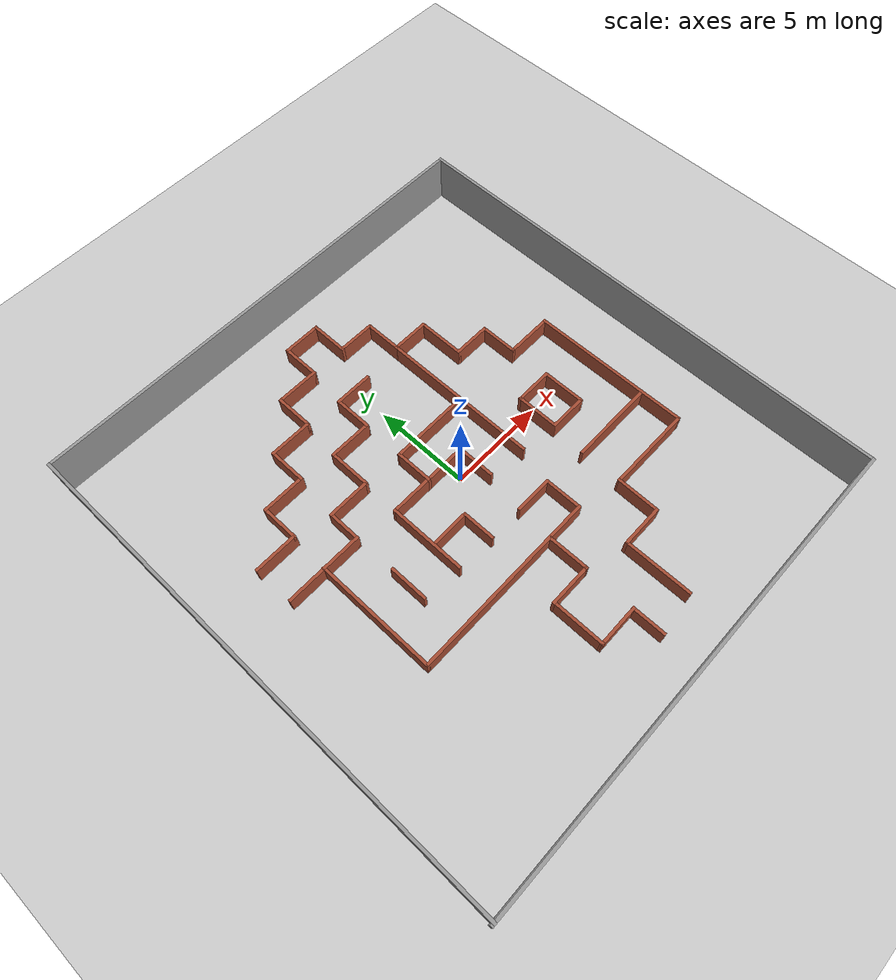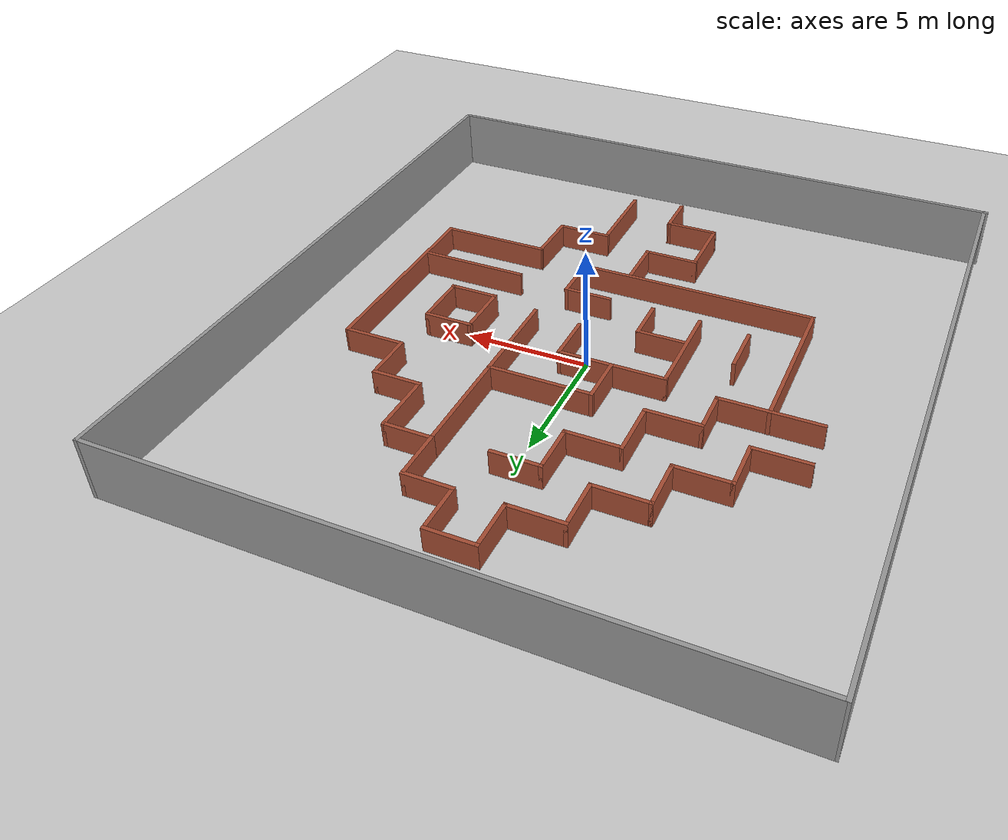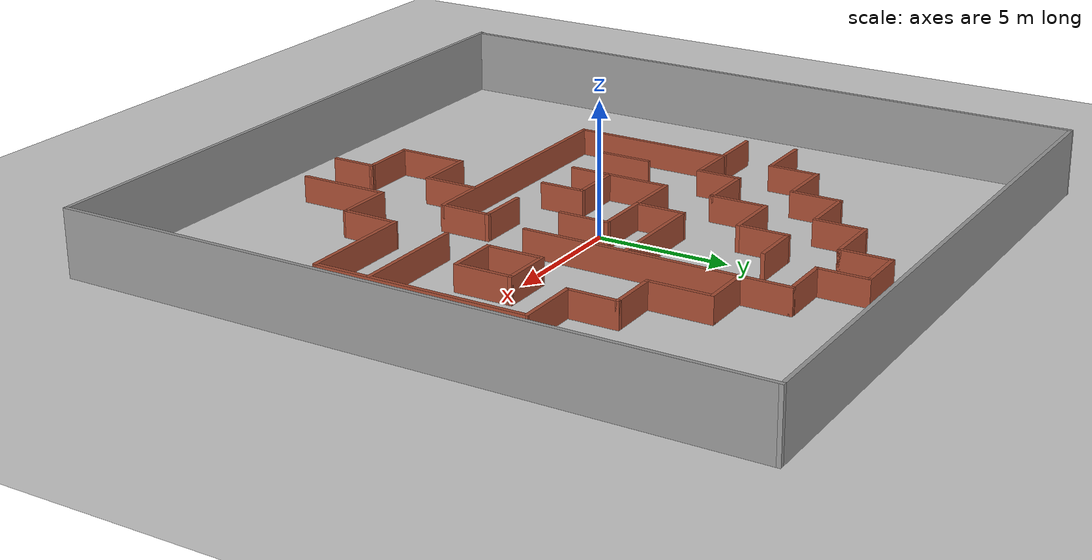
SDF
<sdf version="1.6">
 <world name="default">
  <light name="sun" type="directional">
   <pose>0 0 10 0 -0 0</pose>
   <diffuse>0.8 0.8 0.8 1</diffuse>
   <specular>0.1 0.1 0.1 1</specular>
   <attenuation>
    <range>1000</range>
    <constant>0.9</constant>
    <linear>0.01</linear>
    <quadratic>0.001</quadratic>
   </attenuation>
   <direction>-0.5 0.5 -1</direction>
  </light>
  <model name="ground_plane">
   <static>1</static>
   <link name="link">
    <collision name="collision">
     <geometry><plane><normal>0 0 1</normal><size>100 100</size></plane></geometry>
     <surface><friction><ode><mu>100</mu><mu2>50</mu2></ode></friction></surface>
    </collision>
    <visual name="visual">
     <cast_shadows>0</cast_shadows>
     <geometry><plane><normal>0 0 1</normal><size>100 100</size></plane></geometry>
     <material>
      <script><uri>file://media/materials/scripts/gazebo.material</uri><name>Gazebo/Grey</name></script>
     </material>
    </visual>
   </link>
  </model>
  <gravity>0 0 -9.8</gravity>
  <magnetic_field>6e-06 2.3e-05 -4.2e-05</magnetic_field>
  <atmosphere type="adiabatic"/>
  <physics name="default_physics" default="0" type="ode">
   <max_step_size>0.001</max_step_size>
   <real_time_factor>1</real_time_factor>
   <real_time_update_rate>1000</real_time_update_rate>
  </physics>
  <scene><ambient>0.4 0.4 0.4 1</ambient><background>0.7 0.7 0.7 1</background><shadows>1</shadows></scene>
  <spherical_coordinates>
   <surface_model>EARTH_WGS84</surface_model>
   <latitude_deg>0</latitude_deg>
   <longitude_deg>0</longitude_deg>
   <elevation>0</elevation>
   <heading_deg>0</heading_deg>
  </spherical_coordinates>
  <model name="Untitled">
   <pose>-0.282086 -0.280481 0 0 -0 0</pose>
   <link name="Wall_0">
    <collision name="Wall_0_Collision">
     <geometry><box><size>2.25 0.15 1</size></box></geometry>
     <pose>0 0 0.5 0 -0 0</pose>
    </collision>
    <visual name="Wall_0_Visual">
     <pose>0 0 0.5 0 -0 0</pose>
     <geometry><box><size>2.25 0.15 1</size></box></geometry>
     <material>
      <script><uri>file://media/materials/scripts/gazebo.material</uri><name>Gazebo/Bricks</name></script>
      <ambient>1 1 1 1</ambient>
     </material>
    </visual>
    <pose>-8.02791 3.36948 0 0 -0 0</pose>
   </link>
   <link name="Wall_1">
    <collision name="Wall_1_Collision">
     <geometry><box><size>2 0.15 1</size></box></geometry>
     <pose>0 0 0.5 0 -0 0</pose>
    </collision>
    <visual name="Wall_1_Visual">
     <pose>0 0 0.5 0 -0 0</pose>
     <geometry><box><size>2 0.15 1</size></box></geometry>
     <material>
      <script><uri>file://media/materials/scripts/gazebo.material</uri><name>Gazebo/Bricks</name></script>
      <ambient>1 1 1 1</ambient>
     </material>
    </visual>
    <pose>-6.97791 4.29448 0 0 -0 1.5708</pose>
   </link>
   <link name="Wall_10">
    <collision name="Wall_10_Collision">
     <geometry><box><size>2 0.15 1</size></box></geometry>
     <pose>0 0 0.5 0 -0 0</pose>
    </collision>
    <visual name="Wall_10_Visual">
     <pose>0 0 0.5 0 -0 0</pose>
     <geometry><box><size>2 0.15 1</size></box></geometry>
     <material>
      <script><uri>file://media/materials/scripts/gazebo.material</uri><name>Gazebo/Bricks</name></script>
      <ambient>1 1 1 1</ambient>
     </material>
    </visual>
    <pose>2.09709 8.91948 0 0 -0 0</pose>
   </link>
   <link name="Wall_11">
    <collision name="Wall_11_Collision">
     <geometry><box><size>2 0.15 1</size></box></geometry>
     <pose>0 0 0.5 0 -0 0</pose>
    </collision>
    <visual name="Wall_11_Visual">
     <pose>0 0 0.5 0 -0 0</pose>
     <geometry><box><size>2 0.15 1</size></box></geometry>
     <material>
      <script><uri>file://media/materials/scripts/gazebo.material</uri><name>Gazebo/Bricks</name></script>
      <ambient>1 1 1 1</ambient>
     </material>
    </visual>
    <pose>3.02209 7.99448 0 0 0 -1.5708</pose>
   </link>
   <link name="Wall_12">
    <collision name="Wall_12_Collision">
     <geometry><box><size>2 0.15 1</size></box></geometry>
     <pose>0 0 0.5 0 -0 0</pose>
    </collision>
    <visual name="Wall_12_Visual">
     <pose>0 0 0.5 0 -0 0</pose>
     <geometry><box><size>2 0.15 1</size></box></geometry>
     <material>
      <script><uri>file://media/materials/scripts/gazebo.material</uri><name>Gazebo/Bricks</name></script>
      <ambient>1 1 1 1</ambient>
     </material>
    </visual>
    <pose>3.94709 7.06948 0 0 -0 0</pose>
   </link>
   <link name="Wall_13">
    <collision name="Wall_13_Collision">
     <geometry><box><size>2.5 0.15 1</size></box></geometry>
     <pose>0 0 0.5 0 -0 0</pose>
    </collision>
    <visual name="Wall_13_Visual">
     <pose>0 0 0.5 0 -0 0</pose>
     <geometry><box><size>2.5 0.15 1</size></box></geometry>
     <material>
      <script><uri>file://media/materials/scripts/gazebo.material</uri><name>Gazebo/Bricks</name></script>
      <ambient>1 1 1 1</ambient>
     </material>
    </visual>
    <pose>4.87209 5.89448 0 0 0 -1.5708</pose>
   </link>
   <link name="Wall_14">
    <collision name="Wall_14_Collision">
     <geometry><box><size>2 0.15 1</size></box></geometry>
     <pose>0 0 0.5 0 -0 0</pose>
    </collision>
    <visual name="Wall_14_Visual">
     <pose>0 0 0.5 0 -0 0</pose>
     <geometry><box><size>2 0.15 1</size></box></geometry>
     <material>
      <script><uri>file://media/materials/scripts/gazebo.material</uri><name>Gazebo/Bricks</name></script>
      <ambient>1 1 1 1</ambient>
     </material>
    </visual>
    <pose>5.79709 4.71948 0 0 -0 0</pose>
   </link>
   <link name="Wall_15">
    <collision name="Wall_15_Collision">
     <geometry><box><size>2 0.15 1</size></box></geometry>
     <pose>0 0 0.5 0 -0 0</pose>
    </collision>
    <visual name="Wall_15_Visual">
     <pose>0 0 0.5 0 -0 0</pose>
     <geometry><box><size>2 0.15 1</size></box></geometry>
     <material>
      <script><uri>file://media/materials/scripts/gazebo.material</uri><name>Gazebo/Bricks</name></script>
      <ambient>1 1 1 1</ambient>
     </material>
    </visual>
    <pose>6.72209 3.79448 0 0 0 -1.5708</pose>
   </link>
   <link name="Wall_16">
    <collision name="Wall_16_Collision">
     <geometry><box><size>2.5 0.15 1</size></box></geometry>
     <pose>0 0 0.5 0 -0 0</pose>
    </collision>
    <visual name="Wall_16_Visual">
     <pose>0 0 0.5 0 -0 0</pose>
     <geometry><box><size>2.5 0.15 1</size></box></geometry>
     <material>
      <script><uri>file://media/materials/scripts/gazebo.material</uri><name>Gazebo/Bricks</name></script>
      <ambient>1 1 1 1</ambient>
     </material>
    </visual>
    <pose>7.89709 2.86948 0 0 -0 0</pose>
   </link>
   <link name="Wall_17">
    <collision name="Wall_17_Collision">
     <geometry><box><size>8.25 0.15 1</size></box></geometry>
     <pose>0 0 0.5 0 -0 0</pose>
    </collision>
    <visual name="Wall_17_Visual">
     <pose>0 0 0.5 0 -0 0</pose>
     <geometry><box><size>8.25 0.15 1</size></box></geometry>
     <material>
      <script><uri>file://media/materials/scripts/gazebo.material</uri><name>Gazebo/Bricks</name></script>
      <ambient>1 1 1 1</ambient>
     </material>
    </visual>
    <pose>9.08559 -1.18052 0 0 0 -1.56746</pose>
   </link>
   <link name="Wall_18">
    <collision name="Wall_18_Collision">
     <geometry><box><size>4.50013 0.15 1</size></box></geometry>
     <pose>0 0 0.5 0 -0 0</pose>
    </collision>
    <visual name="Wall_18_Visual">
     <pose>0 0 0.5 0 -0 0</pose>
     <geometry><box><size>4.50013 0.15 1</size></box></geometry>
     <material>
      <script><uri>file://media/materials/scripts/gazebo.material</uri><name>Gazebo/Bricks</name></script>
      <ambient>1 1 1 1</ambient>
     </material>
    </visual>
    <pose>6.92409 -5.23052 0 0 -0 3.14159</pose>
   </link>
   <link name="Wall_19">
    <collision name="Wall_19_Collision">
     <geometry><box><size>2.25 0.15 1</size></box></geometry>
     <pose>0 0 0.5 0 -0 0</pose>
    </collision>
    <visual name="Wall_19_Visual">
     <pose>0 0 0.5 0 -0 0</pose>
     <geometry><box><size>2.25 0.15 1</size></box></geometry>
     <material>
      <script><uri>file://media/materials/scripts/gazebo.material</uri><name>Gazebo/Bricks</name></script>
      <ambient>1 1 1 1</ambient>
     </material>
    </visual>
    <pose>4.73559 -6.28052 0 0 0 -1.58365</pose>
   </link>
   <link name="Wall_2">
    <collision name="Wall_2_Collision">
     <geometry><box><size>2.25 0.15 1</size></box></geometry>
     <pose>0 0 0.5 0 -0 0</pose>
    </collision>
    <visual name="Wall_2_Visual">
     <pose>0 0 0.5 0 -0 0</pose>
     <geometry><box><size>2.25 0.15 1</size></box></geometry>
     <material>
      <script><uri>file://media/materials/scripts/gazebo.material</uri><name>Gazebo/Bricks</name></script>
      <ambient>1 1 1 1</ambient>
     </material>
    </visual>
    <pose>-5.92791 5.21948 0 0 -0 0</pose>
   </link>
   <link name="Wall_20">
    <collision name="Wall_20_Collision">
     <geometry><box><size>2.25 0.15 1</size></box></geometry>
     <pose>0 0 0.5 0 -0 0</pose>
    </collision>
    <visual name="Wall_20_Visual">
     <pose>0 0 0.5 0 -0 0</pose>
     <geometry><box><size>2.25 0.15 1</size></box></geometry>
     <material>
      <script><uri>file://media/materials/scripts/gazebo.material</uri><name>Gazebo/Bricks</name></script>
      <ambient>1 1 1 1</ambient>
     </material>
    </visual>
    <pose>3.67209 -7.33052 0 0 -0 3.14159</pose>
   </link>
   <link name="Wall_21">
    <collision name="Wall_21_Collision">
     <geometry><box><size>3.5 0.15 1</size></box></geometry>
     <pose>0 0 0.5 0 -0 0</pose>
    </collision>
    <visual name="Wall_21_Visual">
     <pose>0 0 0.5 0 -0 0</pose>
     <geometry><box><size>3.5 0.15 1</size></box></geometry>
     <material>
      <script><uri>file://media/materials/scripts/gazebo.material</uri><name>Gazebo/Bricks</name></script>
      <ambient>1 1 1 1</ambient>
     </material>
    </visual>
    <pose>2.62209 -9.00552 0 0 0 -1.5708</pose>
   </link>
   <link name="Wall_23">
    <collision name="Wall_23_Collision">
     <geometry><box><size>4 0.15 1</size></box></geometry>
     <pose>0 0 0.5 0 -0 0</pose>
    </collision>
    <visual name="Wall_23_Visual">
     <pose>0 0 0.5 0 -0 0</pose>
     <geometry><box><size>4 0.15 1</size></box></geometry>
     <material>
      <script><uri>file://media/materials/scripts/gazebo.material</uri><name>Gazebo/Bricks</name></script>
      <ambient>1 1 1 1</ambient>
     </material>
    </visual>
    <pose>-7.09091 1.33848 0 0 -0 0</pose>
   </link>
   <link name="Wall_24">
    <collision name="Wall_24_Collision">
     <geometry><box><size>1.75 0.15 1</size></box></geometry>
     <pose>0 0 0.5 0 -0 0</pose>
    </collision>
    <visual name="Wall_24_Visual">
     <pose>0 0 0.5 0 -0 0</pose>
     <geometry><box><size>1.75 0.15 1</size></box></geometry>
     <material>
      <script><uri>file://media/materials/scripts/gazebo.material</uri><name>Gazebo/Bricks</name></script>
      <ambient>1 1 1 1</ambient>
     </material>
    </visual>
    <pose>-5.16591 2.13848 0 0 -0 1.5708</pose>
   </link>
   <link name="Wall_3">
    <collision name="Wall_3_Collision">
     <geometry><box><size>2 0.15 1</size></box></geometry>
     <pose>0 0 0.5 0 -0 0</pose>
    </collision>
    <visual name="Wall_3_Visual">
     <pose>0 0 0.5 0 -0 0</pose>
     <geometry><box><size>2 0.15 1</size></box></geometry>
     <material>
      <script><uri>file://media/materials/scripts/gazebo.material</uri><name>Gazebo/Bricks</name></script>
      <ambient>1 1 1 1</ambient>
     </material>
    </visual>
    <pose>-4.87791 6.14448 0 0 -0 1.5708</pose>
   </link>
   <link name="Wall_30">
    <collision name="Wall_30_Collision">
     <geometry><box><size>2.25 0.15 1</size></box></geometry>
     <pose>0 0 0.5 0 -0 0</pose>
    </collision>
    <visual name="Wall_30_Visual">
     <pose>0 0 0.5 0 -0 0</pose>
     <geometry><box><size>2.25 0.15 1</size></box></geometry>
     <material>
      <script><uri>file://media/materials/scripts/gazebo.material</uri><name>Gazebo/Bricks</name></script>
      <ambient>1 1 1 1</ambient>
     </material>
    </visual>
    <pose>-4.11591 2.93848 0 0 -0 0</pose>
   </link>
   <link name="Wall_31">
    <collision name="Wall_31_Collision">
     <geometry><box><size>2.25 0.15 1</size></box></geometry>
     <pose>0 0 0.5 0 -0 0</pose>
    </collision>
    <visual name="Wall_31_Visual">
     <pose>0 0 0.5 0 -0 0</pose>
     <geometry><box><size>2.25 0.15 1</size></box></geometry>
     <material>
      <script><uri>file://media/materials/scripts/gazebo.material</uri><name>Gazebo/Bricks</name></script>
      <ambient>1 1 1 1</ambient>
     </material>
    </visual>
    <pose>-3.06591 3.98848 0 0 -0 1.5708</pose>
   </link>
   <link name="Wall_32">
    <collision name="Wall_32_Collision">
     <geometry><box><size>2.25 0.15 1</size></box></geometry>
     <pose>0 0 0.5 0 -0 0</pose>
    </collision>
    <visual name="Wall_32_Visual">
     <pose>0 0 0.5 0 -0 0</pose>
     <geometry><box><size>2.25 0.15 1</size></box></geometry>
     <material>
      <script><uri>file://media/materials/scripts/gazebo.material</uri><name>Gazebo/Bricks</name></script>
      <ambient>1 1 1 1</ambient>
     </material>
    </visual>
    <pose>-2.01591 5.03848 0 0 -0 0</pose>
   </link>
   <link name="Wall_33">
    <collision name="Wall_33_Collision">
     <geometry><box><size>2 0.15 1</size></box></geometry>
     <pose>0 0 0.5 0 -0 0</pose>
    </collision>
    <visual name="Wall_33_Visual">
     <pose>0 0 0.5 0 -0 0</pose>
     <geometry><box><size>2 0.15 1</size></box></geometry>
     <material>
      <script><uri>file://media/materials/scripts/gazebo.material</uri><name>Gazebo/Bricks</name></script>
      <ambient>1 1 1 1</ambient>
     </material>
    </visual>
    <pose>-0.965914 5.96348 0 0 -0 1.5708</pose>
   </link>
   <link name="Wall_34">
    <collision name="Wall_34_Collision">
     <geometry><box><size>2 0.15 1</size></box></geometry>
     <pose>0 0 0.5 0 -0 0</pose>
    </collision>
    <visual name="Wall_34_Visual">
     <pose>0 0 0.5 0 -0 0</pose>
     <geometry><box><size>2 0.15 1</size></box></geometry>
     <material>
      <script><uri>file://media/materials/scripts/gazebo.material</uri><name>Gazebo/Bricks</name></script>
      <ambient>1 1 1 1</ambient>
     </material>
    </visual>
    <pose>-0.040914 6.88848 0 0 -0 0</pose>
   </link>
   <link name="Wall_36">
    <collision name="Wall_36_Collision">
     <geometry><box><size>8.25 0.15 1</size></box></geometry>
     <pose>0 0 0.5 0 -0 0</pose>
    </collision>
    <visual name="Wall_36_Visual">
     <pose>0 0 0.5 0 -0 0</pose>
     <geometry><box><size>8.25 0.15 1</size></box></geometry>
     <material>
      <script><uri>file://media/materials/scripts/gazebo.material</uri><name>Gazebo/Bricks</name></script>
      <ambient>1 1 1 1</ambient>
     </material>
    </visual>
    <pose>3.02209 3.01948 0 0 0 -1.5708</pose>
   </link>
   <link name="Wall_38">
    <collision name="Wall_38_Collision">
     <geometry><box><size>2.25 0.15 1</size></box></geometry>
     <pose>0 0 0.5 0 -0 0</pose>
    </collision>
    <visual name="Wall_38_Visual">
     <pose>0 0 0.5 0 -0 0</pose>
     <geometry><box><size>2.25 0.15 1</size></box></geometry>
     <material>
      <script><uri>file://media/materials/scripts/gazebo.material</uri><name>Gazebo/Bricks</name></script>
      <ambient>1 1 1 1</ambient>
     </material>
    </visual>
    <pose>4.93809 -0.245519 0 0 0 -1.5708</pose>
   </link>
   <link name="Wall_39">
    <collision name="Wall_39_Collision">
     <geometry><box><size>2 0.15 1</size></box></geometry>
     <pose>0 0 0.5 0 -0 0</pose>
    </collision>
    <visual name="Wall_39_Visual">
     <pose>0 0 0.5 0 -0 0</pose>
     <geometry><box><size>2 0.15 1</size></box></geometry>
     <material>
      <script><uri>file://media/materials/scripts/gazebo.material</uri><name>Gazebo/Bricks</name></script>
      <ambient>1 1 1 1</ambient>
     </material>
    </visual>
    <pose>5.86309 -1.29552 0 0 -0 0</pose>
   </link>
   <link name="Wall_4">
    <collision name="Wall_4_Collision">
     <geometry><box><size>2.25 0.15 1</size></box></geometry>
     <pose>0 0 0.5 0 -0 0</pose>
    </collision>
    <visual name="Wall_4_Visual">
     <pose>0 0 0.5 0 -0 0</pose>
     <geometry><box><size>2.25 0.15 1</size></box></geometry>
     <material>
      <script><uri>file://media/materials/scripts/gazebo.material</uri><name>Gazebo/Bricks</name></script>
      <ambient>1 1 1 1</ambient>
     </material>
    </visual>
    <pose>-3.82791 7.06948 0 0 -0 0</pose>
   </link>
   <link name="Wall_40">
    <collision name="Wall_40_Collision">
     <geometry><box><size>2.25 0.15 1</size></box></geometry>
     <pose>0 0 0.5 0 -0 0</pose>
    </collision>
    <visual name="Wall_40_Visual">
     <pose>0 0 0.5 0 -0 0</pose>
     <geometry><box><size>2.25 0.15 1</size></box></geometry>
     <material>
      <script><uri>file://media/materials/scripts/gazebo.material</uri><name>Gazebo/Bricks</name></script>
      <ambient>1 1 1 1</ambient>
     </material>
    </visual>
    <pose>6.78809 -0.245519 0 0 -0 1.5708</pose>
   </link>
   <link name="Wall_42">
    <collision name="Wall_42_Collision">
     <geometry><box><size>2 0.15 1</size></box></geometry>
     <pose>0 0 0.5 0 -0 0</pose>
    </collision>
    <visual name="Wall_42_Visual">
     <pose>0 0 0.5 0 -0 0</pose>
     <geometry><box><size>2 0.15 1</size></box></geometry>
     <material>
      <script><uri>file://media/materials/scripts/gazebo.material</uri><name>Gazebo/Bricks</name></script>
      <ambient>1 1 1 1</ambient>
     </material>
    </visual>
    <pose>5.86309 0.804481 0 0 -0 0</pose>
   </link>
   <link name="Wall_44">
    <collision name="Wall_44_Collision">
     <geometry><box><size>6.25 0.15 1</size></box></geometry>
     <pose>0 0 0.5 0 -0 0</pose>
    </collision>
    <visual name="Wall_44_Visual">
     <pose>0 0 0.5 0 -0 0</pose>
     <geometry><box><size>6.25 0.15 1</size></box></geometry>
     <material>
      <script><uri>file://media/materials/scripts/gazebo.material</uri><name>Gazebo/Bricks</name></script>
      <ambient>1 1 1 1</ambient>
     </material>
    </visual>
    <pose>-7.08391 -1.69452 0 0 0 -1.5708</pose>
   </link>
   <link name="Wall_45">
    <collision name="Wall_45_Collision">
     <geometry><box><size>9.75 0.15 1</size></box></geometry>
     <pose>0 0 0.5 0 -0 0</pose>
    </collision>
    <visual name="Wall_45_Visual">
     <pose>0 0 0.5 0 -0 0</pose>
     <geometry><box><size>9.75 0.15 1</size></box></geometry>
     <material>
      <script><uri>file://media/materials/scripts/gazebo.material</uri><name>Gazebo/Bricks</name></script>
      <ambient>1 1 1 1</ambient>
     </material>
    </visual>
    <pose>-2.28391 -4.74452 0 0 -0 0</pose>
   </link>
   <link name="Wall_46">
    <collision name="Wall_46_Collision">
     <geometry><box><size>2 0.15 1</size></box></geometry>
     <pose>0 0 0.5 0 -0 0</pose>
    </collision>
    <visual name="Wall_46_Visual">
     <pose>0 0 0.5 0 -0 0</pose>
     <geometry><box><size>2 0.15 1</size></box></geometry>
     <material>
      <script><uri>file://media/materials/scripts/gazebo.material</uri><name>Gazebo/Bricks</name></script>
      <ambient>1 1 1 1</ambient>
     </material>
    </visual>
    <pose>2.51609 -3.81952 0 0 -0 1.5708</pose>
   </link>
   <link name="Wall_47">
    <collision name="Wall_47_Collision">
     <geometry><box><size>2 0.15 1</size></box></geometry>
     <pose>0 0 0.5 0 -0 0</pose>
    </collision>
    <visual name="Wall_47_Visual">
     <pose>0 0 0.5 0 -0 0</pose>
     <geometry><box><size>2 0.15 1</size></box></geometry>
     <material>
      <script><uri>file://media/materials/scripts/gazebo.material</uri><name>Gazebo/Bricks</name></script>
      <ambient>1 1 1 1</ambient>
     </material>
    </visual>
    <pose>1.59109 -2.89452 0 0 -0 3.14159</pose>
   </link>
   <link name="Wall_49">
    <collision name="Wall_49_Collision">
     <geometry><box><size>4.5 0.15 1</size></box></geometry>
     <pose>0 0 0.5 0 -0 0</pose>
    </collision>
    <visual name="Wall_49_Visual">
     <pose>0 0 0.5 0 -0 0</pose>
     <geometry><box><size>4.5 0.15 1</size></box></geometry>
     <material>
      <script><uri>file://media/materials/scripts/gazebo.material</uri><name>Gazebo/Bricks</name></script>
      <ambient>1 1 1 1</ambient>
     </material>
    </visual>
    <pose>6.89909 -3.11052 0 0 -0 0</pose>
   </link>
   <link name="Wall_5">
    <collision name="Wall_5_Collision">
     <geometry><box><size>2 0.15 1</size></box></geometry>
     <pose>0 0 0.5 0 -0 0</pose>
    </collision>
    <visual name="Wall_5_Visual">
     <pose>0 0 0.5 0 -0 0</pose>
     <geometry><box><size>2 0.15 1</size></box></geometry>
     <material>
      <script><uri>file://media/materials/scripts/gazebo.material</uri><name>Gazebo/Bricks</name></script>
      <ambient>1 1 1 1</ambient>
     </material>
    </visual>
    <pose>-2.77791 7.99448 0 0 -0 1.5708</pose>
   </link>
   <link name="Wall_51">
    <collision name="Wall_51_Collision">
     <geometry><box><size>4.18816 0.15 1</size></box></geometry>
     <pose>0 0 0.5 0 -0 0</pose>
    </collision>
    <visual name="Wall_51_Visual">
     <pose>0 0 0.5 0 -0 0</pose>
     <geometry><box><size>4.18816 0.15 1</size></box></geometry>
     <material>
      <script><uri>file://media/materials/scripts/gazebo.material</uri><name>Gazebo/Bricks</name></script>
      <ambient>1 1 1 1</ambient>
     </material>
    </visual>
    <pose>0.995086 2.85948 0 0 0 -3.1411</pose>
   </link>
   <link name="Wall_52">
    <collision name="Wall_52_Collision">
     <geometry><box><size>1.97342 0.15 1</size></box></geometry>
     <pose>0 0 0.5 0 -0 0</pose>
    </collision>
    <visual name="Wall_52_Visual">
     <pose>0 0 0.5 0 -0 0</pose>
     <geometry><box><size>1.97342 0.15 1</size></box></geometry>
     <material>
      <script><uri>file://media/materials/scripts/gazebo.material</uri><name>Gazebo/Bricks</name></script>
      <ambient>1 1 1 1</ambient>
     </material>
    </visual>
    <pose>-1.02591 1.94698 0 0 0 -1.57299</pose>
   </link>
   <link name="Wall_53">
    <collision name="Wall_53_Collision">
     <geometry><box><size>2.25 0.15 1</size></box></geometry>
     <pose>0 0 0.5 0 -0 0</pose>
    </collision>
    <visual name="Wall_53_Visual">
     <pose>0 0 0.5 0 -0 0</pose>
     <geometry><box><size>2.25 0.15 1</size></box></geometry>
     <material>
      <script><uri>file://media/materials/scripts/gazebo.material</uri><name>Gazebo/Bricks</name></script>
      <ambient>1 1 1 1</ambient>
     </material>
    </visual>
    <pose>-2.07791 1.03548 0 0 -0 3.14159</pose>
   </link>
   <link name="Wall_54">
    <collision name="Wall_54_Collision">
     <geometry><box><size>4 0.15 1</size></box></geometry>
     <pose>0 0 0.5 0 -0 0</pose>
    </collision>
    <visual name="Wall_54_Visual">
     <pose>0 0 0.5 0 -0 0</pose>
     <geometry><box><size>4 0.15 1</size></box></geometry>
     <material>
      <script><uri>file://media/materials/scripts/gazebo.material</uri><name>Gazebo/Bricks</name></script>
      <ambient>1 1 1 1</ambient>
     </material>
    </visual>
    <pose>-3.12791 -0.889519 0 0 0 -1.5708</pose>
   </link>
   <link name="Wall_56">
    <collision name="Wall_56_Collision">
     <geometry><box><size>2 0.15 1</size></box></geometry>
     <pose>0 0 0.5 0 -0 0</pose>
    </collision>
    <visual name="Wall_56_Visual">
     <pose>0 0 0.5 0 -0 0</pose>
     <geometry><box><size>2 0.15 1</size></box></geometry>
     <material>
      <script><uri>file://media/materials/scripts/gazebo.material</uri><name>Gazebo/Bricks</name></script>
      <ambient>1 1 1 1</ambient>
     </material>
    </visual>
    <pose>-2.08991 -1.30552 0 0 -0 0</pose>
   </link>
   <link name="Wall_57">
    <collision name="Wall_57_Collision">
     <geometry><box><size>1.75 0.15 1</size></box></geometry>
     <pose>0 0 0.5 0 -0 0</pose>
    </collision>
    <visual name="Wall_57_Visual">
     <pose>0 0 0.5 0 -0 0</pose>
     <geometry><box><size>1.75 0.15 1</size></box></geometry>
     <material>
      <script><uri>file://media/materials/scripts/gazebo.material</uri><name>Gazebo/Bricks</name></script>
      <ambient>1 1 1 1</ambient>
     </material>
    </visual>
    <pose>-1.16491 -2.10552 0 0 0 -1.5708</pose>
   </link>
   <link name="Wall_59">
    <collision name="Wall_59_Collision">
     <geometry><box><size>2 0.15 1</size></box></geometry>
     <pose>0 0 0.5 0 -0 0</pose>
    </collision>
    <visual name="Wall_59_Visual">
     <pose>0 0 0.5 0 -0 0</pose>
     <geometry><box><size>2 0.15 1</size></box></geometry>
     <material>
      <script><uri>file://media/materials/scripts/gazebo.material</uri><name>Gazebo/Bricks</name></script>
      <ambient>1 1 1 1</ambient>
     </material>
    </visual>
    <pose>1.06209 0.110481 0 0 -0 1.5708</pose>
   </link>
   <link name="Wall_6">
    <collision name="Wall_6_Collision">
     <geometry><box><size>2.25 0.15 1</size></box></geometry>
     <pose>0 0 0.5 0 -0 0</pose>
    </collision>
    <visual name="Wall_6_Visual">
     <pose>0 0 0.5 0 -0 0</pose>
     <geometry><box><size>2.25 0.15 1</size></box></geometry>
     <material>
      <script><uri>file://media/materials/scripts/gazebo.material</uri><name>Gazebo/Bricks</name></script>
      <ambient>1 1 1 1</ambient>
     </material>
    </visual>
    <pose>-1.72791 8.91948 0 0 -0 0</pose>
   </link>
   <link name="Wall_60">
    <collision name="Wall_60_Collision">
     <geometry><box><size>2.24037 0.15 1</size></box></geometry>
     <pose>0 0 0.5 0 -0 0</pose>
    </collision>
    <visual name="Wall_60_Visual">
     <pose>0 0 0.5 0 -0 0</pose>
     <geometry><box><size>2.24037 0.15 1</size></box></geometry>
     <material>
      <script><uri>file://media/materials/scripts/gazebo.material</uri><name>Gazebo/Bricks</name></script>
      <ambient>1 1 1 1</ambient>
     </material>
    </visual>
    <pose>0.017086 1.03548 0 0 -0 3.14159</pose>
   </link>
   <link name="Wall_62">
    <collision name="Wall_62_Collision">
     <geometry><box><size>2 0.15 1</size></box></geometry>
     <pose>0 0 0.5 0 -0 0</pose>
    </collision>
    <visual name="Wall_62_Visual">
     <pose>0 0 0.5 0 -0 0</pose>
     <geometry><box><size>2 0.15 1</size></box></geometry>
     <material>
      <script><uri>file://media/materials/scripts/gazebo.material</uri><name>Gazebo/Bricks</name></script>
      <ambient>1 1 1 1</ambient>
     </material>
    </visual>
    <pose>-5.12591 -1.74152 0 0 0 -1.5708</pose>
   </link>
   <link name="Wall_64">
    <collision name="Wall_64_Collision">
     <geometry><box><size>1.75 0.15 1</size></box></geometry>
     <pose>0 0 0.5 0 -0 0</pose>
    </collision>
    <visual name="Wall_64_Visual">
     <pose>0 0 0.5 0 -0 0</pose>
     <geometry><box><size>1.75 0.15 1</size></box></geometry>
     <material>
      <script><uri>file://media/materials/scripts/gazebo.material</uri><name>Gazebo/Bricks</name></script>
      <ambient>1 1 1 1</ambient>
     </material>
    </visual>
    <pose>0.481086 -10.1625 0 0 -0 1.5708</pose>
   </link>
   <link name="Wall_65">
    <collision name="Wall_65_Collision">
     <geometry><box><size>2.203 0.15 1</size></box></geometry>
     <pose>0 0 0.5 0 -0 0</pose>
    </collision>
    <visual name="Wall_65_Visual">
     <pose>0 0 0.5 0 -0 0</pose>
     <geometry><box><size>2.203 0.15 1</size></box></geometry>
     <material>
      <script><uri>file://media/materials/scripts/gazebo.material</uri><name>Gazebo/Bricks</name></script>
      <ambient>1 1 1 1</ambient>
     </material>
    </visual>
    <pose>-0.545414 -9.36402 0 0 0 -3.14013</pose>
   </link>
   <link name="Wall_66">
    <collision name="Wall_66_Collision">
     <geometry><box><size>2.73 0.15 1</size></box></geometry>
     <pose>0 0 0.5 0 -0 0</pose>
    </collision>
    <visual name="Wall_66_Visual">
     <pose>0 0 0.5 0 -0 0</pose>
     <geometry><box><size>2.73 0.15 1</size></box></geometry>
     <material>
      <script><uri>file://media/materials/scripts/gazebo.material</uri><name>Gazebo/Bricks</name></script>
      <ambient>1 1 1 1</ambient>
     </material>
    </visual>
    <pose>-1.57191 -8.07552 0 0 -0 1.5708</pose>
   </link>
   <link name="Wall_67">
    <collision name="Wall_67_Collision">
     <geometry><box><size>2.25 0.15 1</size></box></geometry>
     <pose>0 0 0.5 0 -0 0</pose>
    </collision>
    <visual name="Wall_67_Visual">
     <pose>0 0 0.5 0 -0 0</pose>
     <geometry><box><size>2.25 0.15 1</size></box></geometry>
     <material>
      <script><uri>file://media/materials/scripts/gazebo.material</uri><name>Gazebo/Bricks</name></script>
      <ambient>1 1 1 1</ambient>
     </material>
    </visual>
    <pose>-0.531914 -6.78552 0 0 -0 0</pose>
   </link>
   <link name="Wall_68">
    <collision name="Wall_68_Collision">
     <geometry><box><size>2.13811 0.15 1</size></box></geometry>
     <pose>0 0 0.5 0 -0 0</pose>
    </collision>
    <visual name="Wall_68_Visual">
     <pose>0 0 0.5 0 -0 0</pose>
     <geometry><box><size>2.13811 0.15 1</size></box></geometry>
     <material>
      <script><uri>file://media/materials/scripts/gazebo.material</uri><name>Gazebo/Bricks</name></script>
      <ambient>1 1 1 1</ambient>
     </material>
    </visual>
    <pose>0.525737 -5.79147 0 0 -0 1.57316</pose>
   </link>
   <link name="Wall_7">
    <collision name="Wall_7_Collision">
     <geometry><box><size>2 0.15 1</size></box></geometry>
     <pose>0 0 0.5 0 -0 0</pose>
    </collision>
    <visual name="Wall_7_Visual">
     <pose>0 0 0.5 0 -0 0</pose>
     <geometry><box><size>2 0.15 1</size></box></geometry>
     <material>
      <script><uri>file://media/materials/scripts/gazebo.material</uri><name>Gazebo/Bricks</name></script>
      <ambient>1 1 1 1</ambient>
     </material>
    </visual>
    <pose>-0.677914 9.84448 0 0 -0 1.5708</pose>
   </link>
   <link name="Wall_71">
    <collision name="Wall_71_Collision">
     <geometry><box><size>26 0.15 2.5</size></box></geometry>
     <pose>0 0 1.25 0 -0 0</pose>
    </collision>
    <visual name="Wall_71_Visual">
     <pose>0 0 1.25 0 -0 0</pose>
     <geometry><box><size>26 0.15 2.5</size></box></geometry>
     <material>
      <script><uri>file://media/materials/scripts/gazebo.material</uri><name>Gazebo/Grey</name></script>
      <ambient>0 0 0 1</ambient>
     </material>
    </visual>
    <pose>-12.1771 0 0 0 0 -1.5708</pose>
   </link>
   <link name="Wall_72">
    <collision name="Wall_72_Collision">
     <geometry><box><size>24.6913 0.15 2.5</size></box></geometry>
     <pose>0 0 1.25 0 -0 0</pose>
    </collision>
    <visual name="Wall_72_Visual">
     <pose>0 0 1.25 0 -0 0</pose>
     <geometry><box><size>24.6913 0.15 2.5</size></box></geometry>
     <material>
      <script><uri>file://media/materials/scripts/gazebo.material</uri><name>Gazebo/Grey</name></script>
      <ambient>0 0 0 1</ambient>
     </material>
    </visual>
    <pose>-1e-06 -12.925 0 0 -0 0</pose>
   </link>
   <link name="Wall_73">
    <collision name="Wall_73_Collision">
     <geometry><box><size>26 0.15 2.5</size></box></geometry>
     <pose>0 0 1.25 0 -0 0</pose>
    </collision>
    <visual name="Wall_73_Visual">
     <pose>0 0 1.25 0 -0 0</pose>
     <geometry><box><size>26 0.15 2.5</size></box></geometry>
     <material>
      <script><uri>file://media/materials/scripts/gazebo.material</uri><name>Gazebo/Grey</name></script>
      <ambient>0 0 0 1</ambient>
     </material>
    </visual>
    <pose>12.2707 0 0 0 -0 1.5708</pose>
   </link>
   <link name="Wall_74">
    <collision name="Wall_74_Collision">
     <geometry><box><size>24.5 0.15 2.5</size></box></geometry>
     <pose>0 0 1.25 0 -0 0</pose>
    </collision>
    <visual name="Wall_74_Visual">
     <pose>0 0 1.25 0 -0 0</pose>
     <geometry><box><size>24.5 0.15 2.5</size></box></geometry>
     <material>
      <script><uri>file://media/materials/scripts/gazebo.material</uri><name>Gazebo/Grey</name></script>
      <ambient>0 0 0 1</ambient>
     </material>
    </visual>
    <pose>0.095661 12.925 0 0 -0 3.14159</pose>
   </link>
   <link name="Wall_8">
    <collision name="Wall_8_Collision">
     <geometry><box><size>2 0.15 1</size></box></geometry>
     <pose>0 0 0.5 0 -0 0</pose>
    </collision>
    <visual name="Wall_8_Visual">
     <pose>0 0 0.5 0 -0 0</pose>
     <geometry><box><size>2 0.15 1</size></box></geometry>
     <material>
      <script><uri>file://media/materials/scripts/gazebo.material</uri><name>Gazebo/Bricks</name></script>
      <ambient>1 1 1 1</ambient>
     </material>
    </visual>
    <pose>0.247086 10.7695 0 0 -0 0</pose>
   </link>
   <link name="Wall_9">
    <collision name="Wall_9_Collision">
     <geometry><box><size>2 0.15 1</size></box></geometry>
     <pose>0 0 0.5 0 -0 0</pose>
    </collision>
    <visual name="Wall_9_Visual">
     <pose>0 0 0.5 0 -0 0</pose>
     <geometry><box><size>2 0.15 1</size></box></geometry>
     <material>
      <script><uri>file://media/materials/scripts/gazebo.material</uri><name>Gazebo/Bricks</name></script>
      <ambient>1 1 1 1</ambient>
     </material>
    </visual>
    <pose>1.17209 9.84448 0 0 0 -1.5708</pose>
   </link>
   <static>1</static>
  </model>
 </world>
</sdf>
